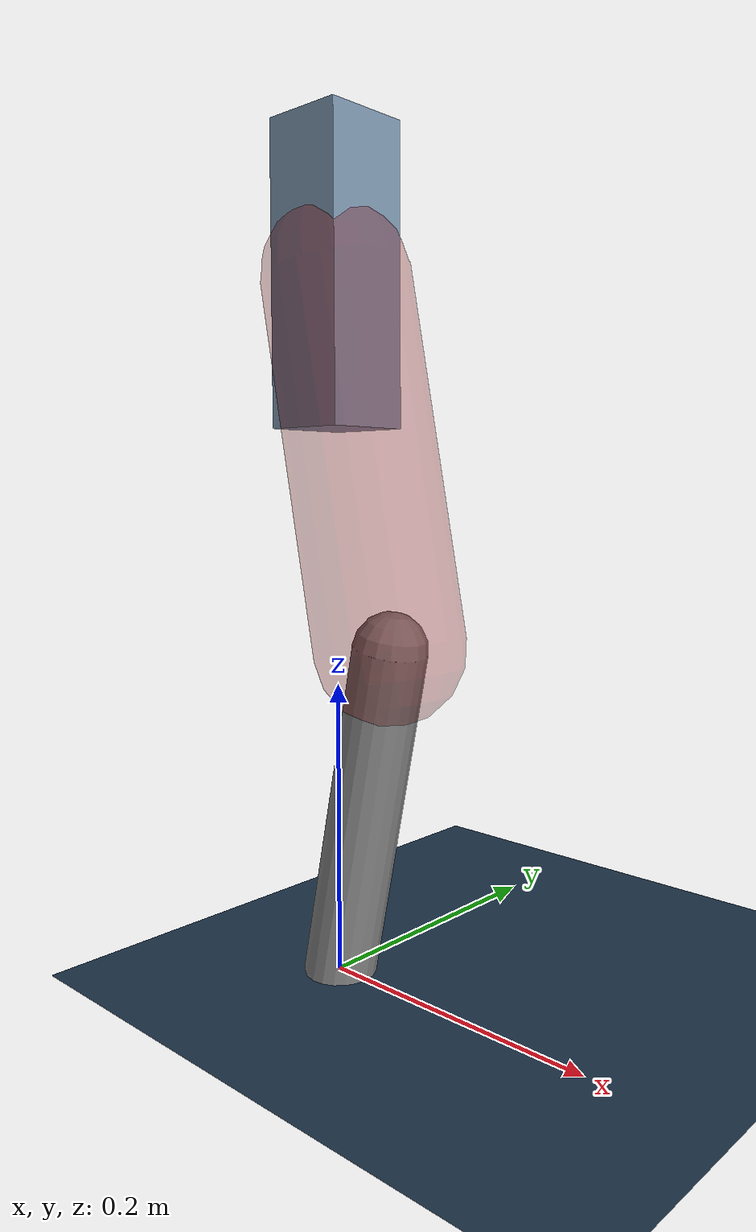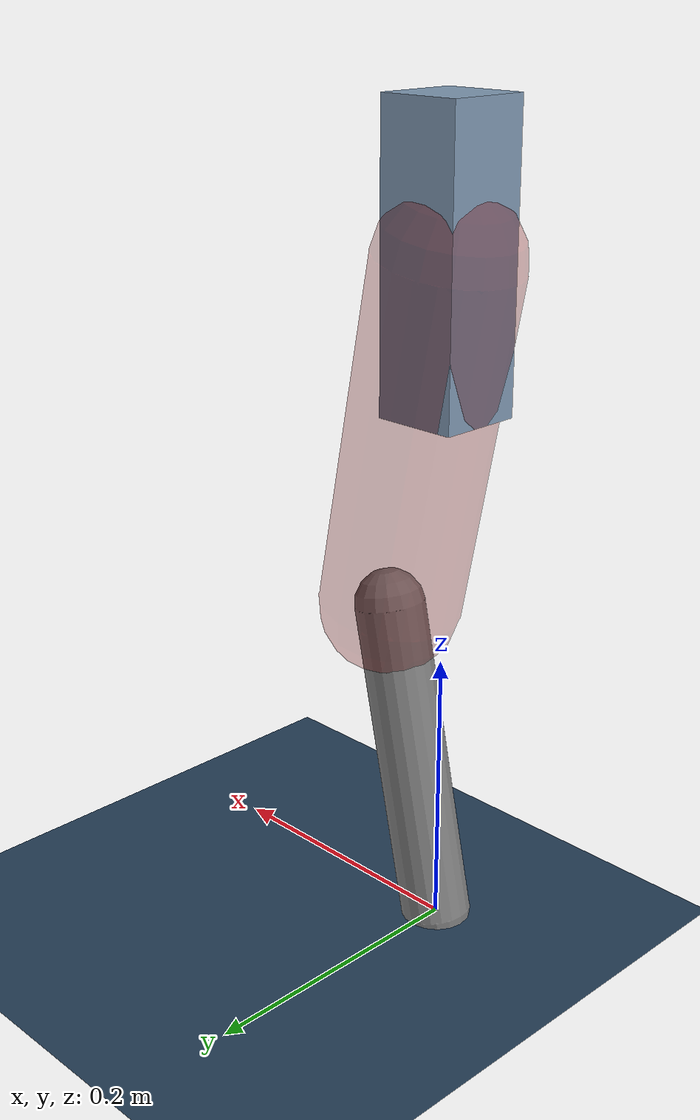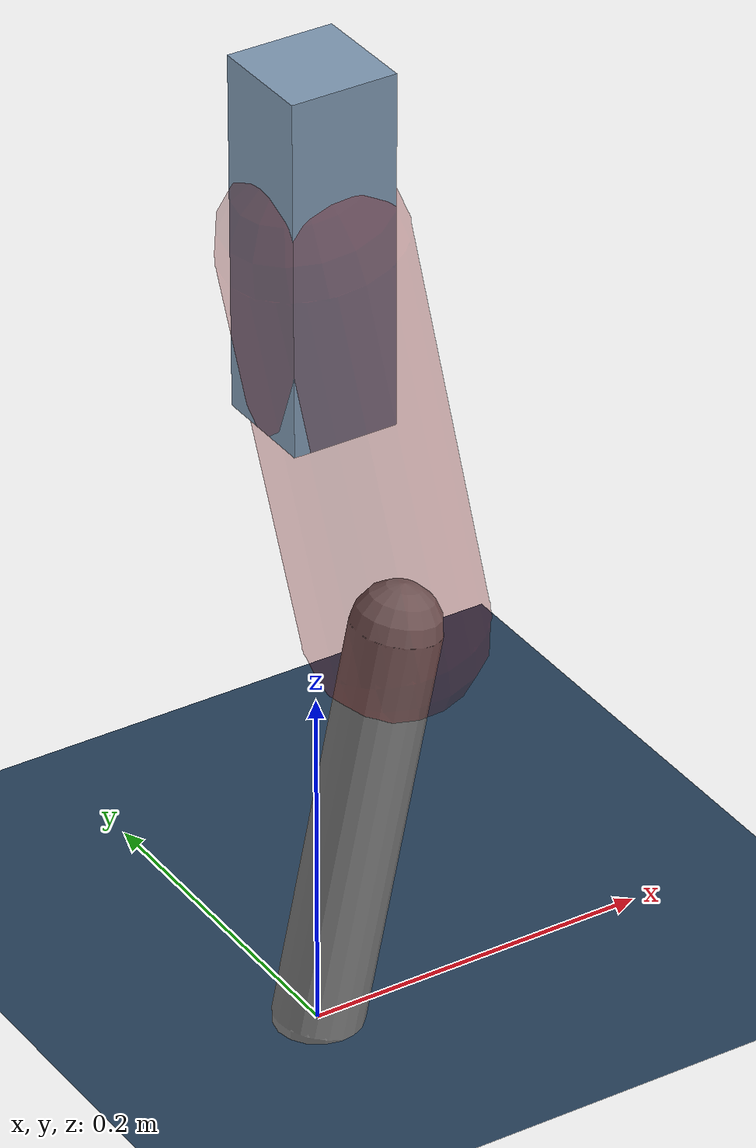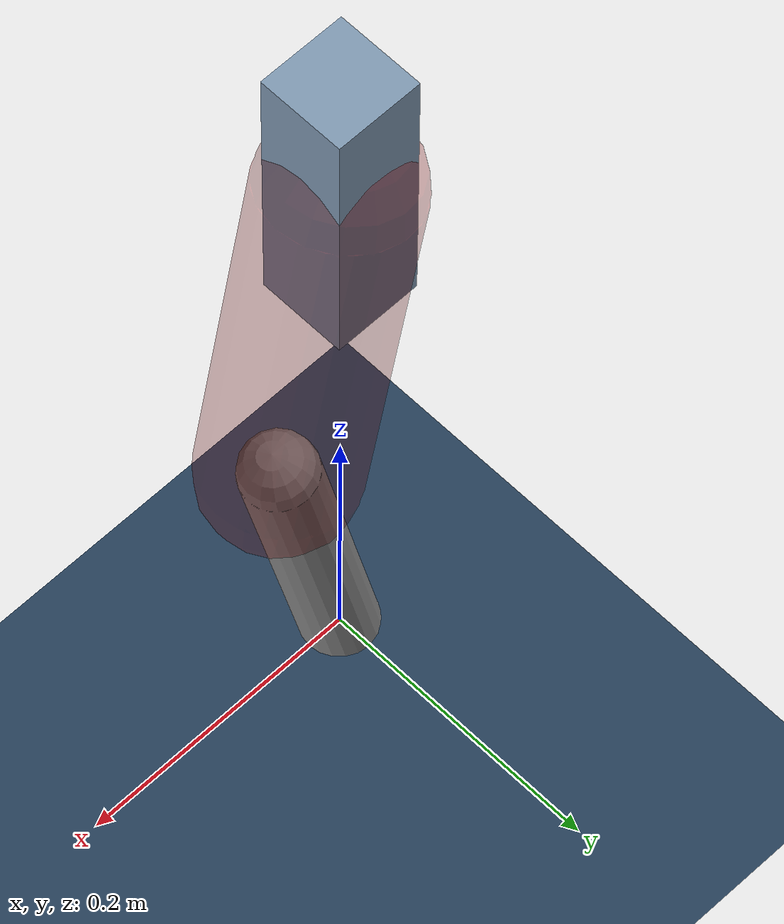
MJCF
<mujoco model="Hopper2D">
	<compiler inertiafromgeom="true" angle="radian" />
	<option timestep="0.001" integrator="implicit" cone="elliptic" solver="Newton" tolerance="1e-10" />

	<default>
		<geom contype="1" conaffinity="1" condim="3" friction="2 0.005 0.0001" solref="0.005 1" />
		<joint limited="true" damping="0.1" />
	</default>

	<asset>
		<texture name="skybox" type="skybox" builtin="gradient" rgb1=".4 .6 .8" rgb2="0 0 0" width="800" height="800" />
		<texture name="grid" type="2d" builtin="checker" rgb1=".1 .2 .3" rgb2=".2 .3 .4" width="300" height="300" mark="edge" markrgb=".2 .3 .4" />
		<material name="ground" texture="grid" texrepeat="1 1" texuniform="true" reflectance="0.1" />
		<material name="leg" rgba="0.5 0.6 0.7 1" />
	</asset>

	<worldbody>

		<geom name="floor" type="plane" size="5 5 0.25" material="ground" />

		<light directional="false" diffuse="0.8 0.8 0.8" specular="0.3 0.3 0.3" pos="0 0 2" dir="0 0 -1" />
		<light mode="targetbodycom" target="base" directional="false" diffuse="0.8 0.8 0.8" specular="0.3 0.3 0.3" pos="0 0 2" dir="0 0 -1" />

		<camera name="fixed" pos="0 -2 1" xyaxes="1 0 0 0 0 1" />
		<camera name="tracking" mode="trackcom" pos="0 -3 1" />

		<body name="root" pos="0 0 0.47260813382259664">
			<joint name="slide_x" type="slide" axis="1 0 0" range="-100 100" />
			<joint name="slide_z" type="slide" axis="0 0 1" range="0 10" />

			<body name="base" pos="0 0 0">
				<geom name="torso" type="box" size="0.03 0.03 0.1" mass="2.293" material="leg" />

				<body name="link1" pos="0 0 0" euler="0 1.372997013223538 0">
					<joint type="hinge" axis="0 -1 0" pos="0 0 0" name="hinge1" limited="true" range="-3.14 3.14" stiffness="0" damping="0.1" />
					<geom name="thigh" type="capsule" fromto="0 0 0 0.2485575814353806 0 0" size="0.05" rgba="0.5 0 0 0.3" mass="0.8526497117319896" />

					<body name="link2" pos="0.2485575814353806 0 0" euler="0 0.40803697221394236 0">
						<joint type="hinge" axis="0 -1 0" pos="0 0 0" name="hinge2" limited="true" range="-3.14 3.14" stiffness="0" damping="0.1" />
						<geom name="shank" type="capsule" fromto="0 0 0 0.23405055238721606 0 0" size="0.025" mass="0.42934044190977283" />

					</body>
				</body>
			</body>
		</body>
	</worldbody>

	<actuator>
		<motor name="torque1" joint="hinge1" ctrlrange="-65.50325202274696 65.50325202274696" ctrllimited="true" gear="1" />
		<motor name="torque2" joint="hinge2" ctrlrange="-72.40343582890495 72.40343582890495" ctrllimited="true" gear="1" />
	</actuator>
</mujoco>
